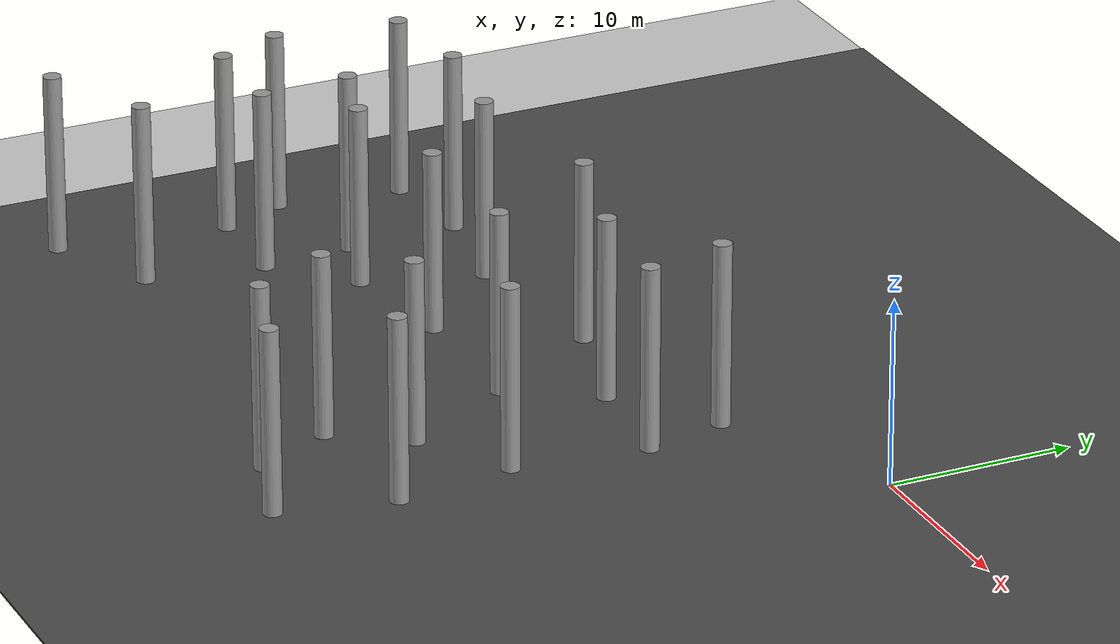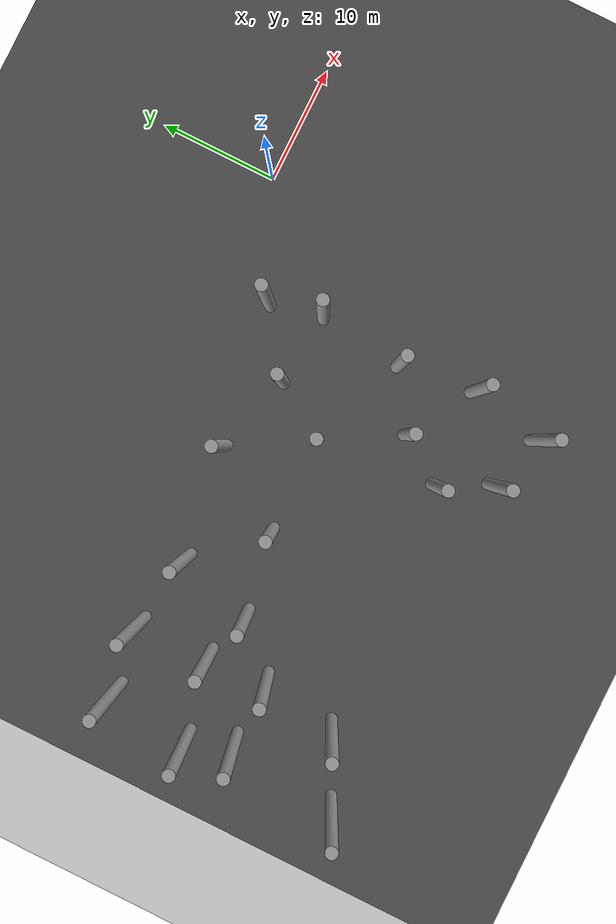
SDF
<sdf version="1.6">
 <world name="default">
  <model name="ground_plane">
   <static>1</static>
   <link name="link">
    <collision name="collision">
     <geometry><plane><normal>0 0 1</normal><size>100 100</size></plane></geometry>
     <surface><friction><ode><mu>100</mu><mu2>50</mu2></ode></friction></surface>
    </collision>
    <visual name="visual">
     <cast_shadows>0</cast_shadows>
     <geometry><plane><normal>0 0 1</normal><size>100 100</size></plane></geometry>
     <material>
      <script><uri>file://media/materials/scripts/gazebo.material</uri><name>Gazebo/Grey</name></script>
     </material>
    </visual>
   </link>
  </model>
  <model name="asphalt_plane">
   <static>1</static>
   <link name="link">
    <collision name="collision"><geometry><box><size>100 100 0.1</size></box></geometry></collision>
    <visual name="visual">
     <cast_shadows>0</cast_shadows>
     <geometry><box><size>100 100 0.1</size></box></geometry>
     <material>
      <script>
       <uri>model://asphalt_plane/materials/scripts</uri>
       <uri>model://asphalt_plane/materials/textures</uri>
       <name>vrc/asphalt</name>
      </script>
     </material>
    </visual>
   </link>
   <pose>0.078502 0.417861 0 0 -0 0</pose>
  </model>
  <model name="forest">
   <link name="link_clone_10">
    <pose>-8.12738 -7.98747 0 0 -0 0</pose>
    <inertial>
     <mass>1000</mass>
     <inertia><ixx>0.145833</ixx><ixy>0</ixy><ixz>0</ixz><iyy>0.145833</iyy><iyz>0</iyz><izz>0.125</izz></inertia>
     <pose>0 0 5 0 -0 0</pose>
    </inertial>
    <visual name="visual">
     <geometry><cylinder><radius>0.5</radius><length>10</length></cylinder></geometry>
     <material>
      <script><name>Gazebo/Grey</name><uri>file://media/materials/scripts/gazebo.material</uri></script>
      <ambient>0.3 0.3 0.3 1</ambient>
      <diffuse>0.7 0.7 0.7 1</diffuse>
      <specular>0.01 0.01 0.01 1</specular>
      <emissive>0 0 0 1</emissive>
      <shader type="vertex"><normal_map>__default__</normal_map></shader>
     </material>
     <pose>0 0 5 0 -0 0</pose>
    </visual>
    <collision name="collision">
     <pose>0 0 5 0 -0 0</pose>
     <geometry><cylinder><radius>0.5</radius><length>10</length></cylinder></geometry>
     <surface>
      <friction>
       <ode><mu>1</mu><mu2>1</mu2><fdir1>0 0 0</fdir1><slip1>0</slip1><slip2>0</slip2></ode>
       <torsional>
        <coefficient>1</coefficient>
        <patch_radius>0</patch_radius>
        <surface_radius>0</surface_radius>
        <use_patch_radius>1</use_patch_radius>
        <ode><slip>0</slip></ode>
       </torsional>
      </friction>
      <bounce><restitution_coefficient>0</restitution_coefficient><threshold>1e+06</threshold></bounce>
      <contact>
       <collide_without_contact>0</collide_without_contact>
       <collide_without_contact_bitmask>1</collide_without_contact_bitmask>
       <collide_bitmask>1</collide_bitmask>
       <ode>
        <soft_cfm>0</soft_cfm>
        <soft_erp>0.2</soft_erp>
        <kp>1e+13</kp>
        <kd>1</kd>
        <max_vel>0.01</max_vel>
        <min_depth>0</min_depth>
       </ode>
       <bullet>
        <split_impulse>1</split_impulse>
        <split_impulse_penetration_threshold>-0.01</split_impulse_penetration_threshold>
        <soft_cfm>0</soft_cfm>
        <soft_erp>0.2</soft_erp>
        <kp>1e+13</kp>
        <kd>1</kd>
       </bullet>
      </contact>
     </surface>
    </collision>
   </link>
   <link name="link_clone_13_clone_17">
    <pose>-25.4174 -12.0347 0 0 -0 0</pose>
    <inertial>
     <mass>1000</mass>
     <inertia><ixx>0.145833</ixx><ixy>0</ixy><ixz>0</ixz><iyy>0.145833</iyy><iyz>0</iyz><izz>0.125</izz></inertia>
     <pose>0 0 5 0 -0 0</pose>
    </inertial>
    <visual name="visual">
     <geometry><cylinder><radius>0.5</radius><length>10</length></cylinder></geometry>
     <material>
      <script><name>Gazebo/Grey</name><uri>file://media/materials/scripts/gazebo.material</uri></script>
      <ambient>0.3 0.3 0.3 1</ambient>
      <diffuse>0.7 0.7 0.7 1</diffuse>
      <specular>0.01 0.01 0.01 1</specular>
      <emissive>0 0 0 1</emissive>
      <shader type="vertex"><normal_map>__default__</normal_map></shader>
     </material>
     <pose>0 0 5 0 -0 0</pose>
    </visual>
    <collision name="collision">
     <pose>0 0 5 0 -0 0</pose>
     <geometry><cylinder><radius>0.5</radius><length>10</length></cylinder></geometry>
     <surface>
      <friction>
       <ode><mu>1</mu><mu2>1</mu2><fdir1>0 0 0</fdir1><slip1>0</slip1><slip2>0</slip2></ode>
       <torsional>
        <coefficient>1</coefficient>
        <patch_radius>0</patch_radius>
        <surface_radius>0</surface_radius>
        <use_patch_radius>1</use_patch_radius>
        <ode><slip>0</slip></ode>
       </torsional>
      </friction>
      <bounce><restitution_coefficient>0</restitution_coefficient><threshold>1e+06</threshold></bounce>
      <contact>
       <collide_without_contact>0</collide_without_contact>
       <collide_without_contact_bitmask>1</collide_without_contact_bitmask>
       <collide_bitmask>1</collide_bitmask>
       <ode>
        <soft_cfm>0</soft_cfm>
        <soft_erp>0.2</soft_erp>
        <kp>1e+13</kp>
        <kd>1</kd>
        <max_vel>0.01</max_vel>
        <min_depth>0</min_depth>
       </ode>
       <bullet>
        <split_impulse>1</split_impulse>
        <split_impulse_penetration_threshold>-0.01</split_impulse_penetration_threshold>
        <soft_cfm>0</soft_cfm>
        <soft_erp>0.2</soft_erp>
        <kp>1e+13</kp>
        <kd>1</kd>
       </bullet>
      </contact>
     </surface>
    </collision>
   </link>
   <link name="link_clone_13_clone_24">
    <pose>-16.355 -22.0603 0 0 -0 0</pose>
    <inertial>
     <mass>1000</mass>
     <inertia><ixx>0.145833</ixx><ixy>0</ixy><ixz>0</ixz><iyy>0.145833</iyy><iyz>0</iyz><izz>0.125</izz></inertia>
     <pose>0 0 5 0 -0 0</pose>
    </inertial>
    <visual name="visual">
     <geometry><cylinder><radius>0.5</radius><length>10</length></cylinder></geometry>
     <material>
      <script><name>Gazebo/Grey</name><uri>file://media/materials/scripts/gazebo.material</uri></script>
      <ambient>0.3 0.3 0.3 1</ambient>
      <diffuse>0.7 0.7 0.7 1</diffuse>
      <specular>0.01 0.01 0.01 1</specular>
      <emissive>0 0 0 1</emissive>
      <shader type="vertex"><normal_map>__default__</normal_map></shader>
     </material>
     <pose>0 0 5 0 -0 0</pose>
    </visual>
    <collision name="collision">
     <pose>0 0 5 0 -0 0</pose>
     <geometry><cylinder><radius>0.5</radius><length>10</length></cylinder></geometry>
     <surface>
      <friction>
       <ode><mu>1</mu><mu2>1</mu2><fdir1>0 0 0</fdir1><slip1>0</slip1><slip2>0</slip2></ode>
       <torsional>
        <coefficient>1</coefficient>
        <patch_radius>0</patch_radius>
        <surface_radius>0</surface_radius>
        <use_patch_radius>1</use_patch_radius>
        <ode><slip>0</slip></ode>
       </torsional>
      </friction>
      <bounce><restitution_coefficient>0</restitution_coefficient><threshold>1e+06</threshold></bounce>
      <contact>
       <collide_without_contact>0</collide_without_contact>
       <collide_without_contact_bitmask>1</collide_without_contact_bitmask>
       <collide_bitmask>1</collide_bitmask>
       <ode>
        <soft_cfm>0</soft_cfm>
        <soft_erp>0.2</soft_erp>
        <kp>1e+13</kp>
        <kd>1</kd>
        <max_vel>0.01</max_vel>
        <min_depth>0</min_depth>
       </ode>
       <bullet>
        <split_impulse>1</split_impulse>
        <split_impulse_penetration_threshold>-0.01</split_impulse_penetration_threshold>
        <soft_cfm>0</soft_cfm>
        <soft_erp>0.2</soft_erp>
        <kp>1e+13</kp>
        <kd>1</kd>
       </bullet>
      </contact>
     </surface>
    </collision>
   </link>
   <link name="link_clone_13_clone_25">
    <pose>-14.2761 -26.1957 0 0 -0 0</pose>
    <inertial>
     <mass>1000</mass>
     <inertia><ixx>0.145833</ixx><ixy>0</ixy><ixz>0</ixz><iyy>0.145833</iyy><iyz>0</iyz><izz>0.125</izz></inertia>
     <pose>0 0 5 0 -0 0</pose>
    </inertial>
    <visual name="visual">
     <geometry><cylinder><radius>0.5</radius><length>10</length></cylinder></geometry>
     <material>
      <script><name>Gazebo/Grey</name><uri>file://media/materials/scripts/gazebo.material</uri></script>
      <ambient>0.3 0.3 0.3 1</ambient>
      <diffuse>0.7 0.7 0.7 1</diffuse>
      <specular>0.01 0.01 0.01 1</specular>
      <emissive>0 0 0 1</emissive>
      <shader type="vertex"><normal_map>__default__</normal_map></shader>
     </material>
     <pose>0 0 5 0 -0 0</pose>
    </visual>
    <collision name="collision">
     <pose>0 0 5 0 -0 0</pose>
     <geometry><cylinder><radius>0.5</radius><length>10</length></cylinder></geometry>
     <surface>
      <friction>
       <ode><mu>1</mu><mu2>1</mu2><fdir1>0 0 0</fdir1><slip1>0</slip1><slip2>0</slip2></ode>
       <torsional>
        <coefficient>1</coefficient>
        <patch_radius>0</patch_radius>
        <surface_radius>0</surface_radius>
        <use_patch_radius>1</use_patch_radius>
        <ode><slip>0</slip></ode>
       </torsional>
      </friction>
      <bounce><restitution_coefficient>0</restitution_coefficient><threshold>1e+06</threshold></bounce>
      <contact>
       <collide_without_contact>0</collide_without_contact>
       <collide_without_contact_bitmask>1</collide_without_contact_bitmask>
       <collide_bitmask>1</collide_bitmask>
       <ode>
        <soft_cfm>0</soft_cfm>
        <soft_erp>0.2</soft_erp>
        <kp>1e+13</kp>
        <kd>1</kd>
        <max_vel>0.01</max_vel>
        <min_depth>0</min_depth>
       </ode>
       <bullet>
        <split_impulse>1</split_impulse>
        <split_impulse_penetration_threshold>-0.01</split_impulse_penetration_threshold>
        <soft_cfm>0</soft_cfm>
        <soft_erp>0.2</soft_erp>
        <kp>1e+13</kp>
        <kd>1</kd>
       </bullet>
      </contact>
     </surface>
    </collision>
   </link>
   <link name="link_clone_13_clone_26">
    <pose>-17.2334 -12.0148 0 0 -0 0</pose>
    <inertial>
     <mass>1000</mass>
     <inertia><ixx>0.145833</ixx><ixy>0</ixy><ixz>0</ixz><iyy>0.145833</iyy><iyz>0</iyz><izz>0.125</izz></inertia>
     <pose>0 0 5 0 -0 0</pose>
    </inertial>
    <visual name="visual">
     <geometry><cylinder><radius>0.5</radius><length>10</length></cylinder></geometry>
     <material>
      <script><name>Gazebo/Grey</name><uri>file://media/materials/scripts/gazebo.material</uri></script>
      <ambient>0.3 0.3 0.3 1</ambient>
      <diffuse>0.7 0.7 0.7 1</diffuse>
      <specular>0.01 0.01 0.01 1</specular>
      <emissive>0 0 0 1</emissive>
      <shader type="vertex"><normal_map>__default__</normal_map></shader>
     </material>
     <pose>0 0 5 0 -0 0</pose>
    </visual>
    <collision name="collision">
     <pose>0 0 5 0 -0 0</pose>
     <geometry><cylinder><radius>0.5</radius><length>10</length></cylinder></geometry>
     <surface>
      <friction>
       <ode><mu>1</mu><mu2>1</mu2><fdir1>0 0 0</fdir1><slip1>0</slip1><slip2>0</slip2></ode>
       <torsional>
        <coefficient>1</coefficient>
        <patch_radius>0</patch_radius>
        <surface_radius>0</surface_radius>
        <use_patch_radius>1</use_patch_radius>
        <ode><slip>0</slip></ode>
       </torsional>
      </friction>
      <bounce><restitution_coefficient>0</restitution_coefficient><threshold>1e+06</threshold></bounce>
      <contact>
       <collide_without_contact>0</collide_without_contact>
       <collide_without_contact_bitmask>1</collide_without_contact_bitmask>
       <collide_bitmask>1</collide_bitmask>
       <ode>
        <soft_cfm>0</soft_cfm>
        <soft_erp>0.2</soft_erp>
        <kp>1e+13</kp>
        <kd>1</kd>
        <max_vel>0.01</max_vel>
        <min_depth>0</min_depth>
       </ode>
       <bullet>
        <split_impulse>1</split_impulse>
        <split_impulse_penetration_threshold>-0.01</split_impulse_penetration_threshold>
        <soft_cfm>0</soft_cfm>
        <soft_erp>0.2</soft_erp>
        <kp>1e+13</kp>
        <kd>1</kd>
       </bullet>
      </contact>
     </surface>
    </collision>
   </link>
   <link name="link_clone_13_clone_27">
    <pose>-21.0488 -5.5321 0 0 -0 0</pose>
    <inertial>
     <mass>1000</mass>
     <inertia><ixx>0.145833</ixx><ixy>0</ixy><ixz>0</ixz><iyy>0.145833</iyy><iyz>0</iyz><izz>0.125</izz></inertia>
     <pose>0 0 5 0 -0 0</pose>
    </inertial>
    <visual name="visual">
     <geometry><cylinder><radius>0.5</radius><length>10</length></cylinder></geometry>
     <material>
      <script><name>Gazebo/Grey</name><uri>file://media/materials/scripts/gazebo.material</uri></script>
      <ambient>0.3 0.3 0.3 1</ambient>
      <diffuse>0.7 0.7 0.7 1</diffuse>
      <specular>0.01 0.01 0.01 1</specular>
      <emissive>0 0 0 1</emissive>
      <shader type="vertex"><normal_map>__default__</normal_map></shader>
     </material>
     <pose>0 0 5 0 -0 0</pose>
    </visual>
    <collision name="collision">
     <pose>0 0 5 0 -0 0</pose>
     <geometry><cylinder><radius>0.5</radius><length>10</length></cylinder></geometry>
     <surface>
      <friction>
       <ode><mu>1</mu><mu2>1</mu2><fdir1>0 0 0</fdir1><slip1>0</slip1><slip2>0</slip2></ode>
       <torsional>
        <coefficient>1</coefficient>
        <patch_radius>0</patch_radius>
        <surface_radius>0</surface_radius>
        <use_patch_radius>1</use_patch_radius>
        <ode><slip>0</slip></ode>
       </torsional>
      </friction>
      <bounce><restitution_coefficient>0</restitution_coefficient><threshold>1e+06</threshold></bounce>
      <contact>
       <collide_without_contact>0</collide_without_contact>
       <collide_without_contact_bitmask>1</collide_without_contact_bitmask>
       <collide_bitmask>1</collide_bitmask>
       <ode>
        <soft_cfm>0</soft_cfm>
        <soft_erp>0.2</soft_erp>
        <kp>1e+13</kp>
        <kd>1</kd>
        <max_vel>0.01</max_vel>
        <min_depth>0</min_depth>
       </ode>
       <bullet>
        <split_impulse>1</split_impulse>
        <split_impulse_penetration_threshold>-0.01</split_impulse_penetration_threshold>
        <soft_cfm>0</soft_cfm>
        <soft_erp>0.2</soft_erp>
        <kp>1e+13</kp>
        <kd>1</kd>
       </bullet>
      </contact>
     </surface>
    </collision>
   </link>
   <link name="link_clone_13_clone_30">
    <pose>-13.7422 -18.1957 0 0 -0 0</pose>
    <inertial>
     <mass>1000</mass>
     <inertia><ixx>0.145833</ixx><ixy>0</ixy><ixz>0</ixz><iyy>0.145833</iyy><iyz>0</iyz><izz>0.125</izz></inertia>
     <pose>0 0 5 0 -0 0</pose>
    </inertial>
    <visual name="visual">
     <geometry><cylinder><radius>0.5</radius><length>10</length></cylinder></geometry>
     <material>
      <script><name>Gazebo/Grey</name><uri>file://media/materials/scripts/gazebo.material</uri></script>
      <ambient>0.3 0.3 0.3 1</ambient>
      <diffuse>0.7 0.7 0.7 1</diffuse>
      <specular>0.01 0.01 0.01 1</specular>
      <emissive>0 0 0 1</emissive>
      <shader type="vertex"><normal_map>__default__</normal_map></shader>
     </material>
     <pose>0 0 5 0 -0 0</pose>
    </visual>
    <collision name="collision">
     <pose>0 0 5 0 -0 0</pose>
     <geometry><cylinder><radius>0.5</radius><length>10</length></cylinder></geometry>
     <surface>
      <friction>
       <ode><mu>1</mu><mu2>1</mu2><fdir1>0 0 0</fdir1><slip1>0</slip1><slip2>0</slip2></ode>
       <torsional>
        <coefficient>1</coefficient>
        <patch_radius>0</patch_radius>
        <surface_radius>0</surface_radius>
        <use_patch_radius>1</use_patch_radius>
        <ode><slip>0</slip></ode>
       </torsional>
      </friction>
      <bounce><restitution_coefficient>0</restitution_coefficient><threshold>1e+06</threshold></bounce>
      <contact>
       <collide_without_contact>0</collide_without_contact>
       <collide_without_contact_bitmask>1</collide_without_contact_bitmask>
       <collide_bitmask>1</collide_bitmask>
       <ode>
        <soft_cfm>0</soft_cfm>
        <soft_erp>0.2</soft_erp>
        <kp>1e+13</kp>
        <kd>1</kd>
        <max_vel>0.01</max_vel>
        <min_depth>0</min_depth>
       </ode>
       <bullet>
        <split_impulse>1</split_impulse>
        <split_impulse_penetration_threshold>-0.01</split_impulse_penetration_threshold>
        <soft_cfm>0</soft_cfm>
        <soft_erp>0.2</soft_erp>
        <kp>1e+13</kp>
        <kd>1</kd>
       </bullet>
      </contact>
     </surface>
    </collision>
   </link>
   <link name="link_clone_13_clone_31">
    <pose>-8.9954 -15.1802 0 0 -0 0</pose>
    <inertial>
     <mass>1000</mass>
     <inertia><ixx>0.145833</ixx><ixy>0</ixy><ixz>0</ixz><iyy>0.145833</iyy><iyz>0</iyz><izz>0.125</izz></inertia>
     <pose>0 0 5 0 -0 0</pose>
    </inertial>
    <visual name="visual">
     <geometry><cylinder><radius>0.5</radius><length>10</length></cylinder></geometry>
     <material>
      <script><name>Gazebo/Grey</name><uri>file://media/materials/scripts/gazebo.material</uri></script>
      <ambient>0.3 0.3 0.3 1</ambient>
      <diffuse>0.7 0.7 0.7 1</diffuse>
      <specular>0.01 0.01 0.01 1</specular>
      <emissive>0 0 0 1</emissive>
      <shader type="vertex"><normal_map>__default__</normal_map></shader>
     </material>
     <pose>0 0 5 0 -0 0</pose>
    </visual>
    <collision name="collision">
     <pose>0 0 5 0 -0 0</pose>
     <geometry><cylinder><radius>0.5</radius><length>10</length></cylinder></geometry>
     <surface>
      <friction>
       <ode><mu>1</mu><mu2>1</mu2><fdir1>0 0 0</fdir1><slip1>0</slip1><slip2>0</slip2></ode>
       <torsional>
        <coefficient>1</coefficient>
        <patch_radius>0</patch_radius>
        <surface_radius>0</surface_radius>
        <use_patch_radius>1</use_patch_radius>
        <ode><slip>0</slip></ode>
       </torsional>
      </friction>
      <bounce><restitution_coefficient>0</restitution_coefficient><threshold>1e+06</threshold></bounce>
      <contact>
       <collide_without_contact>0</collide_without_contact>
       <collide_without_contact_bitmask>1</collide_without_contact_bitmask>
       <collide_bitmask>1</collide_bitmask>
       <ode>
        <soft_cfm>0</soft_cfm>
        <soft_erp>0.2</soft_erp>
        <kp>1e+13</kp>
        <kd>1</kd>
        <max_vel>0.01</max_vel>
        <min_depth>0</min_depth>
       </ode>
       <bullet>
        <split_impulse>1</split_impulse>
        <split_impulse_penetration_threshold>-0.01</split_impulse_penetration_threshold>
        <soft_cfm>0</soft_cfm>
        <soft_erp>0.2</soft_erp>
        <kp>1e+13</kp>
        <kd>1</kd>
       </bullet>
      </contact>
     </surface>
    </collision>
   </link>
   <link name="link_clone_13_clone_32">
    <pose>-8.13943 -21.5572 -0 0 -0 0</pose>
    <inertial>
     <mass>1000</mass>
     <inertia><ixx>0.145833</ixx><ixy>0</ixy><ixz>0</ixz><iyy>0.145833</iyy><iyz>0</iyz><izz>0.125</izz></inertia>
     <pose>0 0 5 0 -0 0</pose>
    </inertial>
    <visual name="visual">
     <geometry><cylinder><radius>0.5</radius><length>10</length></cylinder></geometry>
     <material>
      <script><name>Gazebo/Grey</name><uri>file://media/materials/scripts/gazebo.material</uri></script>
      <ambient>0.3 0.3 0.3 1</ambient>
      <diffuse>0.7 0.7 0.7 1</diffuse>
      <specular>0.01 0.01 0.01 1</specular>
      <emissive>0 0 0 1</emissive>
      <shader type="vertex"><normal_map>__default__</normal_map></shader>
     </material>
     <pose>0 0 5 0 -0 0</pose>
    </visual>
    <collision name="collision">
     <pose>0 0 5 0 -0 0</pose>
     <geometry><cylinder><radius>0.5</radius><length>10</length></cylinder></geometry>
     <surface>
      <friction>
       <ode><mu>1</mu><mu2>1</mu2><fdir1>0 0 0</fdir1><slip1>0</slip1><slip2>0</slip2></ode>
       <torsional>
        <coefficient>1</coefficient>
        <patch_radius>0</patch_radius>
        <surface_radius>0</surface_radius>
        <use_patch_radius>1</use_patch_radius>
        <ode><slip>0</slip></ode>
       </torsional>
      </friction>
      <bounce><restitution_coefficient>0</restitution_coefficient><threshold>1e+06</threshold></bounce>
      <contact>
       <collide_without_contact>0</collide_without_contact>
       <collide_without_contact_bitmask>1</collide_without_contact_bitmask>
       <collide_bitmask>1</collide_bitmask>
       <ode>
        <soft_cfm>0</soft_cfm>
        <soft_erp>0.2</soft_erp>
        <kp>1e+13</kp>
        <kd>1</kd>
        <max_vel>0.01</max_vel>
        <min_depth>0</min_depth>
       </ode>
       <bullet>
        <split_impulse>1</split_impulse>
        <split_impulse_penetration_threshold>-0.01</split_impulse_penetration_threshold>
        <soft_cfm>0</soft_cfm>
        <soft_erp>0.2</soft_erp>
        <kp>1e+13</kp>
        <kd>1</kd>
       </bullet>
      </contact>
     </surface>
    </collision>
   </link>
   <link name="link_clone_13_clone_33">
    <pose>-9.49017 -27.7034 -0 0 -0 0</pose>
    <inertial>
     <mass>1000</mass>
     <inertia><ixx>0.145833</ixx><ixy>0</ixy><ixz>0</ixz><iyy>0.145833</iyy><iyz>0</iyz><izz>0.125</izz></inertia>
     <pose>0 0 5 0 -0 0</pose>
    </inertial>
    <visual name="visual">
     <geometry><cylinder><radius>0.5</radius><length>10</length></cylinder></geometry>
     <material>
      <script><name>Gazebo/Grey</name><uri>file://media/materials/scripts/gazebo.material</uri></script>
      <ambient>0.3 0.3 0.3 1</ambient>
      <diffuse>0.7 0.7 0.7 1</diffuse>
      <specular>0.01 0.01 0.01 1</specular>
      <emissive>0 0 0 1</emissive>
      <shader type="vertex"><normal_map>__default__</normal_map></shader>
     </material>
     <pose>0 0 5 0 -0 0</pose>
    </visual>
    <collision name="collision">
     <pose>0 0 5 0 -0 0</pose>
     <geometry><cylinder><radius>0.5</radius><length>10</length></cylinder></geometry>
     <surface>
      <friction>
       <ode><mu>1</mu><mu2>1</mu2><fdir1>0 0 0</fdir1><slip1>0</slip1><slip2>0</slip2></ode>
       <torsional>
        <coefficient>1</coefficient>
        <patch_radius>0</patch_radius>
        <surface_radius>0</surface_radius>
        <use_patch_radius>1</use_patch_radius>
        <ode><slip>0</slip></ode>
       </torsional>
      </friction>
      <bounce><restitution_coefficient>0</restitution_coefficient><threshold>1e+06</threshold></bounce>
      <contact>
       <collide_without_contact>0</collide_without_contact>
       <collide_without_contact_bitmask>1</collide_without_contact_bitmask>
       <collide_bitmask>1</collide_bitmask>
       <ode>
        <soft_cfm>0</soft_cfm>
        <soft_erp>0.2</soft_erp>
        <kp>1e+13</kp>
        <kd>1</kd>
        <max_vel>0.01</max_vel>
        <min_depth>0</min_depth>
       </ode>
       <bullet>
        <split_impulse>1</split_impulse>
        <split_impulse_penetration_threshold>-0.01</split_impulse_penetration_threshold>
        <soft_cfm>0</soft_cfm>
        <soft_erp>0.2</soft_erp>
        <kp>1e+13</kp>
        <kd>1</kd>
       </bullet>
      </contact>
     </surface>
    </collision>
   </link>
   <link name="link_clone_13_clone_71">
    <pose>-42.3153 -6.52452 0 0 -0 0</pose>
    <inertial>
     <mass>1000</mass>
     <inertia><ixx>0.145833</ixx><ixy>0</ixy><ixz>0</ixz><iyy>0.145833</iyy><iyz>0</iyz><izz>0.125</izz></inertia>
     <pose>0 0 5 0 -0 0</pose>
    </inertial>
    <visual name="visual">
     <geometry><cylinder><radius>0.5</radius><length>10</length></cylinder></geometry>
     <material>
      <script><name>Gazebo/Grey</name><uri>file://media/materials/scripts/gazebo.material</uri></script>
      <ambient>0.3 0.3 0.3 1</ambient>
      <diffuse>0.7 0.7 0.7 1</diffuse>
      <specular>0.01 0.01 0.01 1</specular>
      <emissive>0 0 0 1</emissive>
      <shader type="vertex"><normal_map>__default__</normal_map></shader>
     </material>
     <pose>0 0 5 0 -0 0</pose>
    </visual>
    <collision name="collision">
     <pose>0 0 5 0 -0 0</pose>
     <geometry><cylinder><radius>0.5</radius><length>10</length></cylinder></geometry>
     <surface>
      <friction>
       <ode><mu>1</mu><mu2>1</mu2><fdir1>0 0 0</fdir1><slip1>0</slip1><slip2>0</slip2></ode>
       <torsional>
        <coefficient>1</coefficient>
        <patch_radius>0</patch_radius>
        <surface_radius>0</surface_radius>
        <use_patch_radius>1</use_patch_radius>
        <ode><slip>0</slip></ode>
       </torsional>
      </friction>
      <bounce><restitution_coefficient>0</restitution_coefficient><threshold>1e+06</threshold></bounce>
      <contact>
       <collide_without_contact>0</collide_without_contact>
       <collide_without_contact_bitmask>1</collide_without_contact_bitmask>
       <collide_bitmask>1</collide_bitmask>
       <ode>
        <soft_cfm>0</soft_cfm>
        <soft_erp>0.2</soft_erp>
        <kp>1e+13</kp>
        <kd>1</kd>
        <max_vel>0.01</max_vel>
        <min_depth>0</min_depth>
       </ode>
       <bullet>
        <split_impulse>1</split_impulse>
        <split_impulse_penetration_threshold>-0.01</split_impulse_penetration_threshold>
        <soft_cfm>0</soft_cfm>
        <soft_erp>0.2</soft_erp>
        <kp>1e+13</kp>
        <kd>1</kd>
       </bullet>
      </contact>
     </surface>
    </collision>
   </link>
   <link name="link_clone_13_clone_72">
    <pose>-36.6822 -5.84747 0 0 -0 0</pose>
    <inertial>
     <mass>1000</mass>
     <inertia><ixx>0.145833</ixx><ixy>0</ixy><ixz>0</ixz><iyy>0.145833</iyy><iyz>0</iyz><izz>0.125</izz></inertia>
     <pose>0 0 5 0 -0 0</pose>
    </inertial>
    <visual name="visual">
     <geometry><cylinder><radius>0.5</radius><length>10</length></cylinder></geometry>
     <material>
      <script><name>Gazebo/Grey</name><uri>file://media/materials/scripts/gazebo.material</uri></script>
      <ambient>0.3 0.3 0.3 1</ambient>
      <diffuse>0.7 0.7 0.7 1</diffuse>
      <specular>0.01 0.01 0.01 1</specular>
      <emissive>0 0 0 1</emissive>
      <shader type="vertex"><normal_map>__default__</normal_map></shader>
     </material>
     <pose>0 0 5 0 -0 0</pose>
    </visual>
    <collision name="collision">
     <pose>0 0 5 0 -0 0</pose>
     <geometry><cylinder><radius>0.5</radius><length>10</length></cylinder></geometry>
     <surface>
      <friction>
       <ode><mu>1</mu><mu2>1</mu2><fdir1>0 0 0</fdir1><slip1>0</slip1><slip2>0</slip2></ode>
       <torsional>
        <coefficient>1</coefficient>
        <patch_radius>0</patch_radius>
        <surface_radius>0</surface_radius>
        <use_patch_radius>1</use_patch_radius>
        <ode><slip>0</slip></ode>
       </torsional>
      </friction>
      <bounce><restitution_coefficient>0</restitution_coefficient><threshold>1e+06</threshold></bounce>
      <contact>
       <collide_without_contact>0</collide_without_contact>
       <collide_without_contact_bitmask>1</collide_without_contact_bitmask>
       <collide_bitmask>1</collide_bitmask>
       <ode>
        <soft_cfm>0</soft_cfm>
        <soft_erp>0.2</soft_erp>
        <kp>1e+13</kp>
        <kd>1</kd>
        <max_vel>0.01</max_vel>
        <min_depth>0</min_depth>
       </ode>
       <bullet>
        <split_impulse>1</split_impulse>
        <split_impulse_penetration_threshold>-0.01</split_impulse_penetration_threshold>
        <soft_cfm>0</soft_cfm>
        <soft_erp>0.2</soft_erp>
        <kp>1e+13</kp>
        <kd>1</kd>
       </bullet>
      </contact>
     </surface>
    </collision>
   </link>
   <link name="link_clone_13_clone_73">
    <pose>-30.3927 -6.88336 0 0 -0 0</pose>
    <inertial>
     <mass>1000</mass>
     <inertia><ixx>0.145833</ixx><ixy>0</ixy><ixz>0</ixz><iyy>0.145833</iyy><iyz>0</iyz><izz>0.125</izz></inertia>
     <pose>0 0 5 0 -0 0</pose>
    </inertial>
    <visual name="visual">
     <geometry><cylinder><radius>0.5</radius><length>10</length></cylinder></geometry>
     <material>
      <script><name>Gazebo/Grey</name><uri>file://media/materials/scripts/gazebo.material</uri></script>
      <ambient>0.3 0.3 0.3 1</ambient>
      <diffuse>0.7 0.7 0.7 1</diffuse>
      <specular>0.01 0.01 0.01 1</specular>
      <emissive>0 0 0 1</emissive>
      <shader type="vertex"><normal_map>__default__</normal_map></shader>
     </material>
     <pose>0 0 5 0 -0 0</pose>
    </visual>
    <collision name="collision">
     <pose>0 0 5 0 -0 0</pose>
     <geometry><cylinder><radius>0.5</radius><length>10</length></cylinder></geometry>
     <surface>
      <friction>
       <ode><mu>1</mu><mu2>1</mu2><fdir1>0 0 0</fdir1><slip1>0</slip1><slip2>0</slip2></ode>
       <torsional>
        <coefficient>1</coefficient>
        <patch_radius>0</patch_radius>
        <surface_radius>0</surface_radius>
        <use_patch_radius>1</use_patch_radius>
        <ode><slip>0</slip></ode>
       </torsional>
      </friction>
      <bounce><restitution_coefficient>0</restitution_coefficient><threshold>1e+06</threshold></bounce>
      <contact>
       <collide_without_contact>0</collide_without_contact>
       <collide_without_contact_bitmask>1</collide_without_contact_bitmask>
       <collide_bitmask>1</collide_bitmask>
       <ode>
        <soft_cfm>0</soft_cfm>
        <soft_erp>0.2</soft_erp>
        <kp>1e+13</kp>
        <kd>1</kd>
        <max_vel>0.01</max_vel>
        <min_depth>0</min_depth>
       </ode>
       <bullet>
        <split_impulse>1</split_impulse>
        <split_impulse_penetration_threshold>-0.01</split_impulse_penetration_threshold>
        <soft_cfm>0</soft_cfm>
        <soft_erp>0.2</soft_erp>
        <kp>1e+13</kp>
        <kd>1</kd>
       </bullet>
      </contact>
     </surface>
    </collision>
   </link>
   <link name="link_clone_13_clone_74">
    <pose>-43.2506 -13.2982 0 0 -0 0</pose>
    <inertial>
     <mass>1000</mass>
     <inertia><ixx>0.145833</ixx><ixy>0</ixy><ixz>0</ixz><iyy>0.145833</iyy><iyz>0</iyz><izz>0.125</izz></inertia>
     <pose>0 0 5 0 -0 0</pose>
    </inertial>
    <visual name="visual">
     <geometry><cylinder><radius>0.5</radius><length>10</length></cylinder></geometry>
     <material>
      <script><name>Gazebo/Grey</name><uri>file://media/materials/scripts/gazebo.material</uri></script>
      <ambient>0.3 0.3 0.3 1</ambient>
      <diffuse>0.7 0.7 0.7 1</diffuse>
      <specular>0.01 0.01 0.01 1</specular>
      <emissive>0 0 0 1</emissive>
      <shader type="vertex"><normal_map>__default__</normal_map></shader>
     </material>
     <pose>0 0 5 0 -0 0</pose>
    </visual>
    <collision name="collision">
     <pose>0 0 5 0 -0 0</pose>
     <geometry><cylinder><radius>0.5</radius><length>10</length></cylinder></geometry>
     <surface>
      <friction>
       <ode><mu>1</mu><mu2>1</mu2><fdir1>0 0 0</fdir1><slip1>0</slip1><slip2>0</slip2></ode>
       <torsional>
        <coefficient>1</coefficient>
        <patch_radius>0</patch_radius>
        <surface_radius>0</surface_radius>
        <use_patch_radius>1</use_patch_radius>
        <ode><slip>0</slip></ode>
       </torsional>
      </friction>
      <bounce><restitution_coefficient>0</restitution_coefficient><threshold>1e+06</threshold></bounce>
      <contact>
       <collide_without_contact>0</collide_without_contact>
       <collide_without_contact_bitmask>1</collide_without_contact_bitmask>
       <collide_bitmask>1</collide_bitmask>
       <ode>
        <soft_cfm>0</soft_cfm>
        <soft_erp>0.2</soft_erp>
        <kp>1e+13</kp>
        <kd>1</kd>
        <max_vel>0.01</max_vel>
        <min_depth>0</min_depth>
       </ode>
       <bullet>
        <split_impulse>1</split_impulse>
        <split_impulse_penetration_threshold>-0.01</split_impulse_penetration_threshold>
        <soft_cfm>0</soft_cfm>
        <soft_erp>0.2</soft_erp>
        <kp>1e+13</kp>
        <kd>1</kd>
       </bullet>
      </contact>
     </surface>
    </collision>
   </link>
   <link name="link_clone_13_clone_75">
    <pose>-36.509 -11.9655 0 0 -0 0</pose>
    <inertial>
     <mass>1000</mass>
     <inertia><ixx>0.145833</ixx><ixy>0</ixy><ixz>0</ixz><iyy>0.145833</iyy><iyz>0</iyz><izz>0.125</izz></inertia>
     <pose>0 0 5 0 -0 0</pose>
    </inertial>
    <visual name="visual">
     <geometry><cylinder><radius>0.5</radius><length>10</length></cylinder></geometry>
     <material>
      <script><name>Gazebo/Grey</name><uri>file://media/materials/scripts/gazebo.material</uri></script>
      <ambient>0.3 0.3 0.3 1</ambient>
      <diffuse>0.7 0.7 0.7 1</diffuse>
      <specular>0.01 0.01 0.01 1</specular>
      <emissive>0 0 0 1</emissive>
      <shader type="vertex"><normal_map>__default__</normal_map></shader>
     </material>
     <pose>0 0 5 0 -0 0</pose>
    </visual>
    <collision name="collision">
     <pose>0 0 5 0 -0 0</pose>
     <geometry><cylinder><radius>0.5</radius><length>10</length></cylinder></geometry>
     <surface>
      <friction>
       <ode><mu>1</mu><mu2>1</mu2><fdir1>0 0 0</fdir1><slip1>0</slip1><slip2>0</slip2></ode>
       <torsional>
        <coefficient>1</coefficient>
        <patch_radius>0</patch_radius>
        <surface_radius>0</surface_radius>
        <use_patch_radius>1</use_patch_radius>
        <ode><slip>0</slip></ode>
       </torsional>
      </friction>
      <bounce><restitution_coefficient>0</restitution_coefficient><threshold>1e+06</threshold></bounce>
      <contact>
       <collide_without_contact>0</collide_without_contact>
       <collide_without_contact_bitmask>1</collide_without_contact_bitmask>
       <collide_bitmask>1</collide_bitmask>
       <ode>
        <soft_cfm>0</soft_cfm>
        <soft_erp>0.2</soft_erp>
        <kp>1e+13</kp>
        <kd>1</kd>
        <max_vel>0.01</max_vel>
        <min_depth>0</min_depth>
       </ode>
       <bullet>
        <split_impulse>1</split_impulse>
        <split_impulse_penetration_threshold>-0.01</split_impulse_penetration_threshold>
        <soft_cfm>0</soft_cfm>
        <soft_erp>0.2</soft_erp>
        <kp>1e+13</kp>
        <kd>1</kd>
       </bullet>
      </contact>
     </surface>
    </collision>
   </link>
   <link name="link_clone_13_clone_76">
    <pose>-32.2761 -13.1957 0 0 -0 0</pose>
    <inertial>
     <mass>1000</mass>
     <inertia><ixx>0.145833</ixx><ixy>0</ixy><ixz>0</ixz><iyy>0.145833</iyy><iyz>0</iyz><izz>0.125</izz></inertia>
     <pose>0 0 5 0 -0 0</pose>
    </inertial>
    <visual name="visual">
     <geometry><cylinder><radius>0.5</radius><length>10</length></cylinder></geometry>
     <material>
      <script><name>Gazebo/Grey</name><uri>file://media/materials/scripts/gazebo.material</uri></script>
      <ambient>0.3 0.3 0.3 1</ambient>
      <diffuse>0.7 0.7 0.7 1</diffuse>
      <specular>0.01 0.01 0.01 1</specular>
      <emissive>0 0 0 1</emissive>
      <shader type="vertex"><normal_map>__default__</normal_map></shader>
     </material>
     <pose>0 0 5 0 -0 0</pose>
    </visual>
    <collision name="collision">
     <pose>0 0 5 0 -0 0</pose>
     <geometry><cylinder><radius>0.5</radius><length>10</length></cylinder></geometry>
     <surface>
      <friction>
       <ode><mu>1</mu><mu2>1</mu2><fdir1>0 0 0</fdir1><slip1>0</slip1><slip2>0</slip2></ode>
       <torsional>
        <coefficient>1</coefficient>
        <patch_radius>0</patch_radius>
        <surface_radius>0</surface_radius>
        <use_patch_radius>1</use_patch_radius>
        <ode><slip>0</slip></ode>
       </torsional>
      </friction>
      <bounce><restitution_coefficient>0</restitution_coefficient><threshold>1e+06</threshold></bounce>
      <contact>
       <collide_without_contact>0</collide_without_contact>
       <collide_without_contact_bitmask>1</collide_without_contact_bitmask>
       <collide_bitmask>1</collide_bitmask>
       <ode>
        <soft_cfm>0</soft_cfm>
        <soft_erp>0.2</soft_erp>
        <kp>1e+13</kp>
        <kd>1</kd>
        <max_vel>0.01</max_vel>
        <min_depth>0</min_depth>
       </ode>
       <bullet>
        <split_impulse>1</split_impulse>
        <split_impulse_penetration_threshold>-0.01</split_impulse_penetration_threshold>
        <soft_cfm>0</soft_cfm>
        <soft_erp>0.2</soft_erp>
        <kp>1e+13</kp>
        <kd>1</kd>
       </bullet>
      </contact>
     </surface>
    </collision>
   </link>
   <link name="link_clone_13_clone_77">
    <pose>-41.7283 -16.8621 0 0 -0 0</pose>
    <inertial>
     <mass>1000</mass>
     <inertia><ixx>0.145833</ixx><ixy>0</ixy><ixz>0</ixz><iyy>0.145833</iyy><iyz>0</iyz><izz>0.125</izz></inertia>
     <pose>0 0 5 0 -0 0</pose>
    </inertial>
    <visual name="visual">
     <geometry><cylinder><radius>0.5</radius><length>10</length></cylinder></geometry>
     <material>
      <script><name>Gazebo/Grey</name><uri>file://media/materials/scripts/gazebo.material</uri></script>
      <ambient>0.3 0.3 0.3 1</ambient>
      <diffuse>0.7 0.7 0.7 1</diffuse>
      <specular>0.01 0.01 0.01 1</specular>
      <emissive>0 0 0 1</emissive>
      <shader type="vertex"><normal_map>__default__</normal_map></shader>
     </material>
     <pose>0 0 5 0 -0 0</pose>
    </visual>
    <collision name="collision">
     <pose>0 0 5 0 -0 0</pose>
     <geometry><cylinder><radius>0.5</radius><length>10</length></cylinder></geometry>
     <surface>
      <friction>
       <ode><mu>1</mu><mu2>1</mu2><fdir1>0 0 0</fdir1><slip1>0</slip1><slip2>0</slip2></ode>
       <torsional>
        <coefficient>1</coefficient>
        <patch_radius>0</patch_radius>
        <surface_radius>0</surface_radius>
        <use_patch_radius>1</use_patch_radius>
        <ode><slip>0</slip></ode>
       </torsional>
      </friction>
      <bounce><restitution_coefficient>0</restitution_coefficient><threshold>1e+06</threshold></bounce>
      <contact>
       <collide_without_contact>0</collide_without_contact>
       <collide_without_contact_bitmask>1</collide_without_contact_bitmask>
       <collide_bitmask>1</collide_bitmask>
       <ode>
        <soft_cfm>0</soft_cfm>
        <soft_erp>0.2</soft_erp>
        <kp>1e+13</kp>
        <kd>1</kd>
        <max_vel>0.01</max_vel>
        <min_depth>0</min_depth>
       </ode>
       <bullet>
        <split_impulse>1</split_impulse>
        <split_impulse_penetration_threshold>-0.01</split_impulse_penetration_threshold>
        <soft_cfm>0</soft_cfm>
        <soft_erp>0.2</soft_erp>
        <kp>1e+13</kp>
        <kd>1</kd>
       </bullet>
      </contact>
     </surface>
    </collision>
   </link>
   <link name="link_clone_13_clone_79">
    <pose>-42.9475 -26.0451 0 0 -0 0</pose>
    <inertial>
     <mass>1000</mass>
     <inertia><ixx>0.145833</ixx><ixy>0</ixy><ixz>0</ixz><iyy>0.145833</iyy><iyz>0</iyz><izz>0.125</izz></inertia>
     <pose>0 0 5 0 -0 0</pose>
    </inertial>
    <visual name="visual">
     <geometry><cylinder><radius>0.5</radius><length>10</length></cylinder></geometry>
     <material>
      <script><name>Gazebo/Grey</name><uri>file://media/materials/scripts/gazebo.material</uri></script>
      <ambient>0.3 0.3 0.3 1</ambient>
      <diffuse>0.7 0.7 0.7 1</diffuse>
      <specular>0.01 0.01 0.01 1</specular>
      <emissive>0 0 0 1</emissive>
      <shader type="vertex"><normal_map>__default__</normal_map></shader>
     </material>
     <pose>0 0 5 0 -0 0</pose>
    </visual>
    <collision name="collision">
     <pose>0 0 5 0 -0 0</pose>
     <geometry><cylinder><radius>0.5</radius><length>10</length></cylinder></geometry>
     <surface>
      <friction>
       <ode><mu>1</mu><mu2>1</mu2><fdir1>0 0 0</fdir1><slip1>0</slip1><slip2>0</slip2></ode>
       <torsional>
        <coefficient>1</coefficient>
        <patch_radius>0</patch_radius>
        <surface_radius>0</surface_radius>
        <use_patch_radius>1</use_patch_radius>
        <ode><slip>0</slip></ode>
       </torsional>
      </friction>
      <bounce><restitution_coefficient>0</restitution_coefficient><threshold>1e+06</threshold></bounce>
      <contact>
       <collide_without_contact>0</collide_without_contact>
       <collide_without_contact_bitmask>1</collide_without_contact_bitmask>
       <collide_bitmask>1</collide_bitmask>
       <ode>
        <soft_cfm>0</soft_cfm>
        <soft_erp>0.2</soft_erp>
        <kp>1e+13</kp>
        <kd>1</kd>
        <max_vel>0.01</max_vel>
        <min_depth>0</min_depth>
       </ode>
       <bullet>
        <split_impulse>1</split_impulse>
        <split_impulse_penetration_threshold>-0.01</split_impulse_penetration_threshold>
        <soft_cfm>0</soft_cfm>
        <soft_erp>0.2</soft_erp>
        <kp>1e+13</kp>
        <kd>1</kd>
       </bullet>
      </contact>
     </surface>
    </collision>
   </link>
   <link name="link_clone_13_clone_82">
    <pose>-37.3204 -23.2822 0 0 -0 0</pose>
    <inertial>
     <mass>1000</mass>
     <inertia><ixx>0.145833</ixx><ixy>0</ixy><ixz>0</ixz><iyy>0.145833</iyy><iyz>0</iyz><izz>0.125</izz></inertia>
     <pose>0 0 5 0 -0 0</pose>
    </inertial>
    <visual name="visual">
     <geometry><cylinder><radius>0.5</radius><length>10</length></cylinder></geometry>
     <material>
      <script><name>Gazebo/Grey</name><uri>file://media/materials/scripts/gazebo.material</uri></script>
      <ambient>0.3 0.3 0.3 1</ambient>
      <diffuse>0.7 0.7 0.7 1</diffuse>
      <specular>0.01 0.01 0.01 1</specular>
      <emissive>0 0 0 1</emissive>
      <shader type="vertex"><normal_map>__default__</normal_map></shader>
     </material>
     <pose>0 0 5 0 -0 0</pose>
    </visual>
    <collision name="collision">
     <pose>0 0 5 0 -0 0</pose>
     <geometry><cylinder><radius>0.5</radius><length>10</length></cylinder></geometry>
     <surface>
      <friction>
       <ode><mu>1</mu><mu2>1</mu2><fdir1>0 0 0</fdir1><slip1>0</slip1><slip2>0</slip2></ode>
       <torsional>
        <coefficient>1</coefficient>
        <patch_radius>0</patch_radius>
        <surface_radius>0</surface_radius>
        <use_patch_radius>1</use_patch_radius>
        <ode><slip>0</slip></ode>
       </torsional>
      </friction>
      <bounce><restitution_coefficient>0</restitution_coefficient><threshold>1e+06</threshold></bounce>
      <contact>
       <collide_without_contact>0</collide_without_contact>
       <collide_without_contact_bitmask>1</collide_without_contact_bitmask>
       <collide_bitmask>1</collide_bitmask>
       <ode>
        <soft_cfm>0</soft_cfm>
        <soft_erp>0.2</soft_erp>
        <kp>1e+13</kp>
        <kd>1</kd>
        <max_vel>0.01</max_vel>
        <min_depth>0</min_depth>
       </ode>
       <bullet>
        <split_impulse>1</split_impulse>
        <split_impulse_penetration_threshold>-0.01</split_impulse_penetration_threshold>
        <soft_cfm>0</soft_cfm>
        <soft_erp>0.2</soft_erp>
        <kp>1e+13</kp>
        <kd>1</kd>
       </bullet>
      </contact>
     </surface>
    </collision>
   </link>
   <link name="link_clone_13_clone_83">
    <pose>-36.2067 -16.943 0 0 -0 0</pose>
    <inertial>
     <mass>1000</mass>
     <inertia><ixx>0.145833</ixx><ixy>0</ixy><ixz>0</ixz><iyy>0.145833</iyy><iyz>0</iyz><izz>0.125</izz></inertia>
     <pose>0 0 5 0 -0 0</pose>
    </inertial>
    <visual name="visual">
     <geometry><cylinder><radius>0.5</radius><length>10</length></cylinder></geometry>
     <material>
      <script><name>Gazebo/Grey</name><uri>file://media/materials/scripts/gazebo.material</uri></script>
      <ambient>0.3 0.3 0.3 1</ambient>
      <diffuse>0.7 0.7 0.7 1</diffuse>
      <specular>0.01 0.01 0.01 1</specular>
      <emissive>0 0 0 1</emissive>
      <shader type="vertex"><normal_map>__default__</normal_map></shader>
     </material>
     <pose>0 0 5 0 -0 0</pose>
    </visual>
    <collision name="collision">
     <pose>0 0 5 0 -0 0</pose>
     <geometry><cylinder><radius>0.5</radius><length>10</length></cylinder></geometry>
     <surface>
      <friction>
       <ode><mu>1</mu><mu2>1</mu2><fdir1>0 0 0</fdir1><slip1>0</slip1><slip2>0</slip2></ode>
       <torsional>
        <coefficient>1</coefficient>
        <patch_radius>0</patch_radius>
        <surface_radius>0</surface_radius>
        <use_patch_radius>1</use_patch_radius>
        <ode><slip>0</slip></ode>
       </torsional>
      </friction>
      <bounce><restitution_coefficient>0</restitution_coefficient><threshold>1e+06</threshold></bounce>
      <contact>
       <collide_without_contact>0</collide_without_contact>
       <collide_without_contact_bitmask>1</collide_without_contact_bitmask>
       <collide_bitmask>1</collide_bitmask>
       <ode>
        <soft_cfm>0</soft_cfm>
        <soft_erp>0.2</soft_erp>
        <kp>1e+13</kp>
        <kd>1</kd>
        <max_vel>0.01</max_vel>
        <min_depth>0</min_depth>
       </ode>
       <bullet>
        <split_impulse>1</split_impulse>
        <split_impulse_penetration_threshold>-0.01</split_impulse_penetration_threshold>
        <soft_cfm>0</soft_cfm>
        <soft_erp>0.2</soft_erp>
        <kp>1e+13</kp>
        <kd>1</kd>
       </bullet>
      </contact>
     </surface>
    </collision>
   </link>
   <link name="link_clone_4">
    <pose>-9.13518 -3.56096 0 0 -0 0</pose>
    <inertial>
     <mass>1000</mass>
     <inertia><ixx>0.145833</ixx><ixy>0</ixy><ixz>0</ixz><iyy>0.145833</iyy><iyz>0</iyz><izz>0.125</izz></inertia>
     <pose>0 0 5 0 -0 0</pose>
    </inertial>
    <visual name="visual">
     <geometry><cylinder><radius>0.5</radius><length>10</length></cylinder></geometry>
     <material>
      <script><name>Gazebo/Grey</name><uri>file://media/materials/scripts/gazebo.material</uri></script>
      <ambient>0.3 0.3 0.3 1</ambient>
      <diffuse>0.7 0.7 0.7 1</diffuse>
      <specular>0.01 0.01 0.01 1</specular>
      <emissive>0 0 0 1</emissive>
      <shader type="vertex"><normal_map>__default__</normal_map></shader>
     </material>
     <pose>0 0 5 0 -0 0</pose>
    </visual>
    <collision name="collision">
     <pose>0 0 5 0 -0 0</pose>
     <geometry><cylinder><radius>0.5</radius><length>10</length></cylinder></geometry>
     <surface>
      <friction>
       <ode><mu>1</mu><mu2>1</mu2><fdir1>0 0 0</fdir1><slip1>0</slip1><slip2>0</slip2></ode>
       <torsional>
        <coefficient>1</coefficient>
        <patch_radius>0</patch_radius>
        <surface_radius>0</surface_radius>
        <use_patch_radius>1</use_patch_radius>
        <ode><slip>0</slip></ode>
       </torsional>
      </friction>
      <bounce><restitution_coefficient>0</restitution_coefficient><threshold>1e+06</threshold></bounce>
      <contact>
       <collide_without_contact>0</collide_without_contact>
       <collide_without_contact_bitmask>1</collide_without_contact_bitmask>
       <collide_bitmask>1</collide_bitmask>
       <ode>
        <soft_cfm>0</soft_cfm>
        <soft_erp>0.2</soft_erp>
        <kp>1e+13</kp>
        <kd>1</kd>
        <max_vel>0.01</max_vel>
        <min_depth>0</min_depth>
       </ode>
       <bullet>
        <split_impulse>1</split_impulse>
        <split_impulse_penetration_threshold>-0.01</split_impulse_penetration_threshold>
        <soft_cfm>0</soft_cfm>
        <soft_erp>0.2</soft_erp>
        <kp>1e+13</kp>
        <kd>1</kd>
       </bullet>
      </contact>
     </surface>
    </collision>
   </link>
   <link name="link_clone_9">
    <pose>-14.3395 -7.42792 0 0 -0 0</pose>
    <inertial>
     <mass>1000</mass>
     <inertia><ixx>0.145833</ixx><ixy>0</ixy><ixz>0</ixz><iyy>0.145833</iyy><iyz>0</iyz><izz>0.125</izz></inertia>
     <pose>0 0 5 0 -0 0</pose>
    </inertial>
    <visual name="visual">
     <geometry><cylinder><radius>0.5</radius><length>10</length></cylinder></geometry>
     <material>
      <script><name>Gazebo/Grey</name><uri>file://media/materials/scripts/gazebo.material</uri></script>
      <ambient>0.3 0.3 0.3 1</ambient>
      <diffuse>0.7 0.7 0.7 1</diffuse>
      <specular>0.01 0.01 0.01 1</specular>
      <emissive>0 0 0 1</emissive>
      <shader type="vertex"><normal_map>__default__</normal_map></shader>
     </material>
     <pose>0 0 5 0 -0 0</pose>
    </visual>
    <collision name="collision">
     <pose>0 0 5 0 -0 0</pose>
     <geometry><cylinder><radius>0.5</radius><length>10</length></cylinder></geometry>
     <surface>
      <friction>
       <ode><mu>1</mu><mu2>1</mu2><fdir1>0 0 0</fdir1><slip1>0</slip1><slip2>0</slip2></ode>
       <torsional>
        <coefficient>1</coefficient>
        <patch_radius>0</patch_radius>
        <surface_radius>0</surface_radius>
        <use_patch_radius>1</use_patch_radius>
        <ode><slip>0</slip></ode>
       </torsional>
      </friction>
      <bounce><restitution_coefficient>0</restitution_coefficient><threshold>1e+06</threshold></bounce>
      <contact>
       <collide_without_contact>0</collide_without_contact>
       <collide_without_contact_bitmask>1</collide_without_contact_bitmask>
       <collide_bitmask>1</collide_bitmask>
       <ode>
        <soft_cfm>0</soft_cfm>
        <soft_erp>0.2</soft_erp>
        <kp>1e+13</kp>
        <kd>1</kd>
        <max_vel>0.01</max_vel>
        <min_depth>0</min_depth>
       </ode>
       <bullet>
        <split_impulse>1</split_impulse>
        <split_impulse_penetration_threshold>-0.01</split_impulse_penetration_threshold>
        <soft_cfm>0</soft_cfm>
        <soft_erp>0.2</soft_erp>
        <kp>1e+13</kp>
        <kd>1</kd>
       </bullet>
      </contact>
     </surface>
    </collision>
   </link>
   <static>1</static>
   <pose>-0.461627 -0.993358 0 0 -0 0</pose>
  </model>
 </world>
</sdf>
